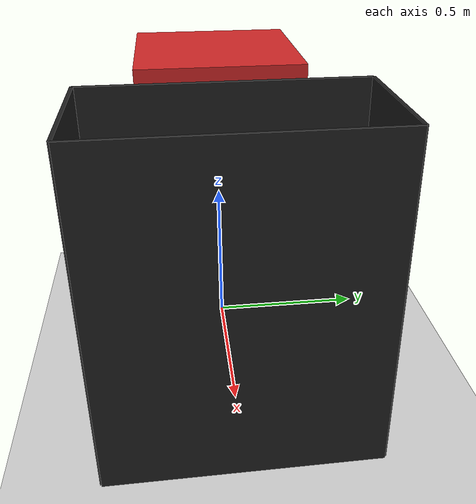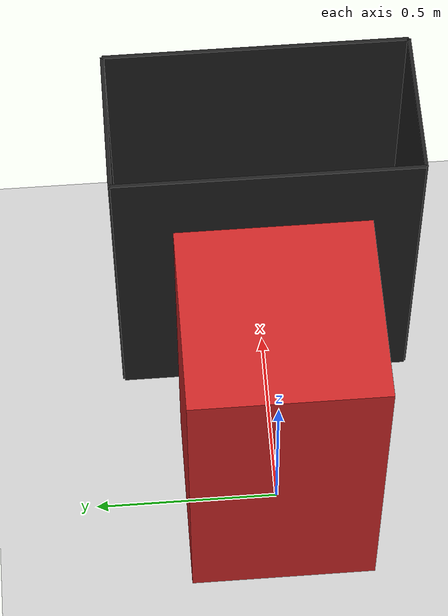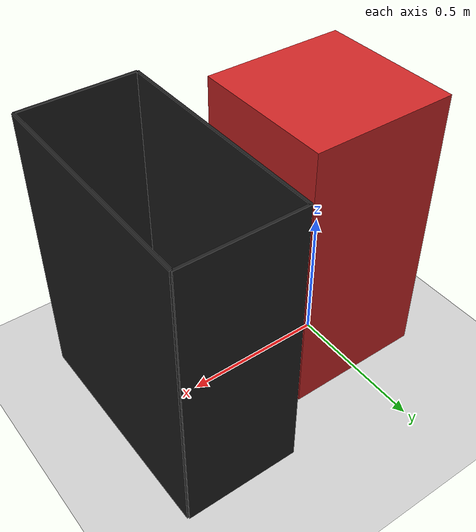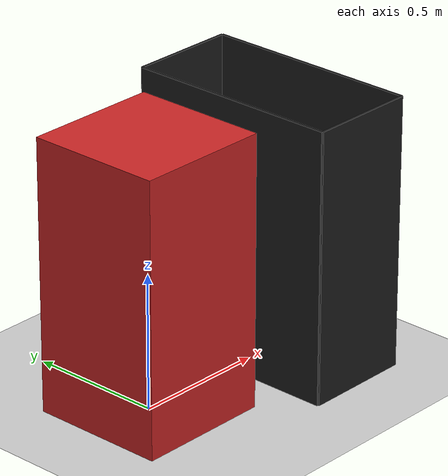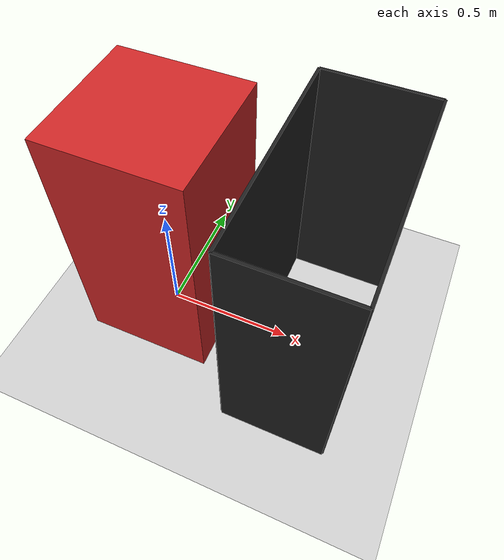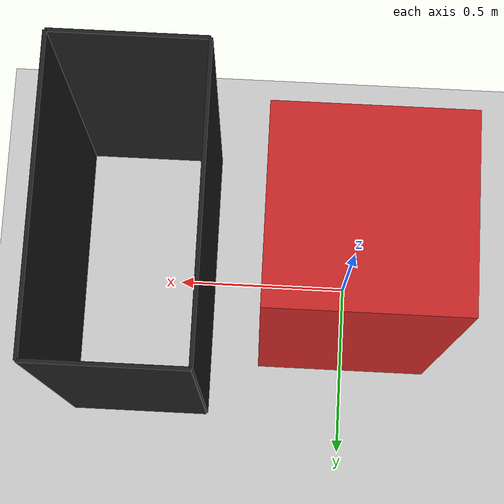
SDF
<sdf version="1.6">
 <world name="default">
  <include><uri>model://ground_plane</uri></include>
  <include><uri>model://sun</uri></include>
  <scene><shadows>false</shadows></scene>
  <physics type="ode">
   <real_time_update_rate>1000.0</real_time_update_rate>
   <max_step_size>0.001</max_step_size>
   <real_time_factor>1</real_time_factor>
   <ode>
    <solver>
     <type>quick</type>
     <iters>150</iters>
     <precon_iters>0</precon_iters>
     <sor>1.400000</sor>
     <use_dynamic_moi_rescaling>1</use_dynamic_moi_rescaling>
    </solver>
    <constraints>
     <cfm>0.00001</cfm>
     <erp>0.2</erp>
     <contact_max_correcting_vel>2000.000000</contact_max_correcting_vel>
     <contact_surface_layer>0.01000</contact_surface_layer>
    </constraints>
   </ode>
  </physics>
  <model name="red_box">
   <pose>0 0 0.5 0 0 0</pose>
   <static>true</static>
   <link name="link">
    <visual name="visual">
     <geometry><box><size>0.5 0.5 1</size></box></geometry>
     <material>
      <script><uri>file://media/materials/scripts/gazebo.material</uri><name>Gazebo/Red</name></script>
     </material>
    </visual>
   </link>
  </model>
  <model name="back_wall">
   <pose>0.4 0 0.5 0 0 0</pose>
   <static>true</static>
   <link name="link">
    <visual name="visual">
     <geometry><box><size>0.01 0.8 1</size></box></geometry>
     <material>
      <script><uri>file://media/materials/scripts/gazebo.material</uri><name>Gazebo/Black</name></script>
     </material>
    </visual>
   </link>
  </model>
  <model name="front_wall">
   <pose>0.8 0 0.5 0 0 0</pose>
   <static>true</static>
   <link name="link">
    <visual name="visual">
     <geometry><box><size>0.01 0.8 1</size></box></geometry>
     <material>
      <script><uri>file://media/materials/scripts/gazebo.material</uri><name>Gazebo/Black</name></script>
     </material>
    </visual>
   </link>
  </model>
  <model name="left_wall">
   <pose>0.6 0.4 0.5 0 0 0</pose>
   <static>true</static>
   <link name="link">
    <visual name="visual">
     <geometry><box><size>0.4 0.01 1</size></box></geometry>
     <material>
      <script><uri>file://media/materials/scripts/gazebo.material</uri><name>Gazebo/Black</name></script>
     </material>
    </visual>
   </link>
  </model>
  <model name="right_wall">
   <pose>0.6 -0.4 0.5 0 0 0</pose>
   <static>true</static>
   <link name="link">
    <visual name="visual">
     <geometry><box><size>0.4 0.01 1</size></box></geometry>
     <material>
      <script><uri>file://media/materials/scripts/gazebo.material</uri><name>Gazebo/Black</name></script>
     </material>
    </visual>
   </link>
  </model>
 </world>
</sdf>
